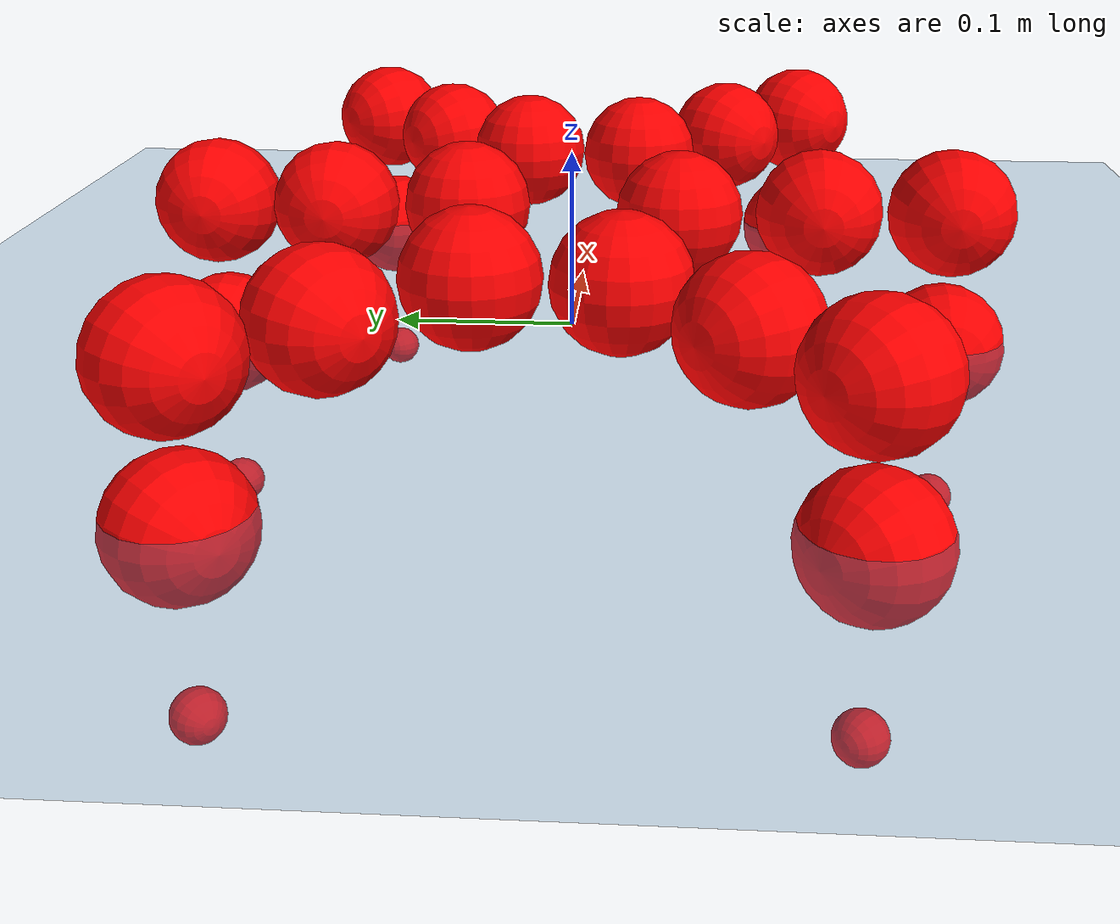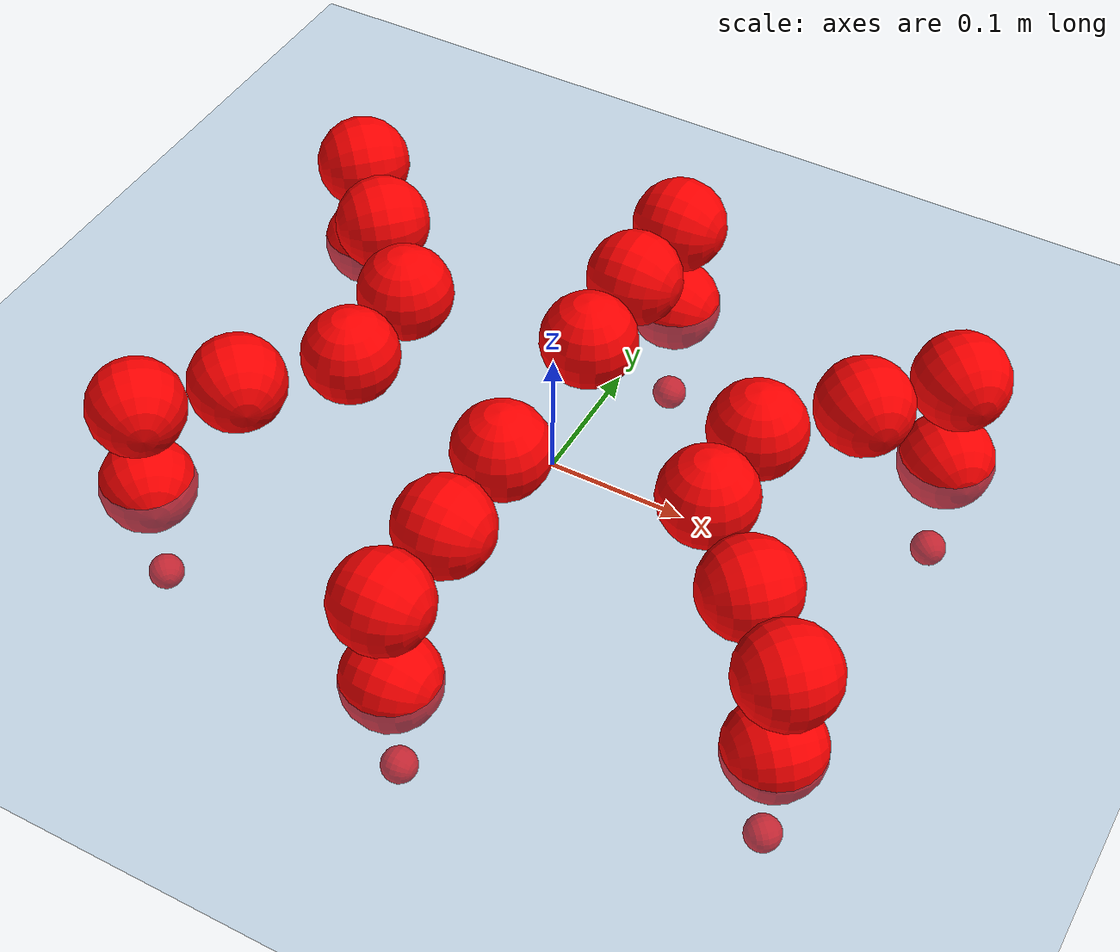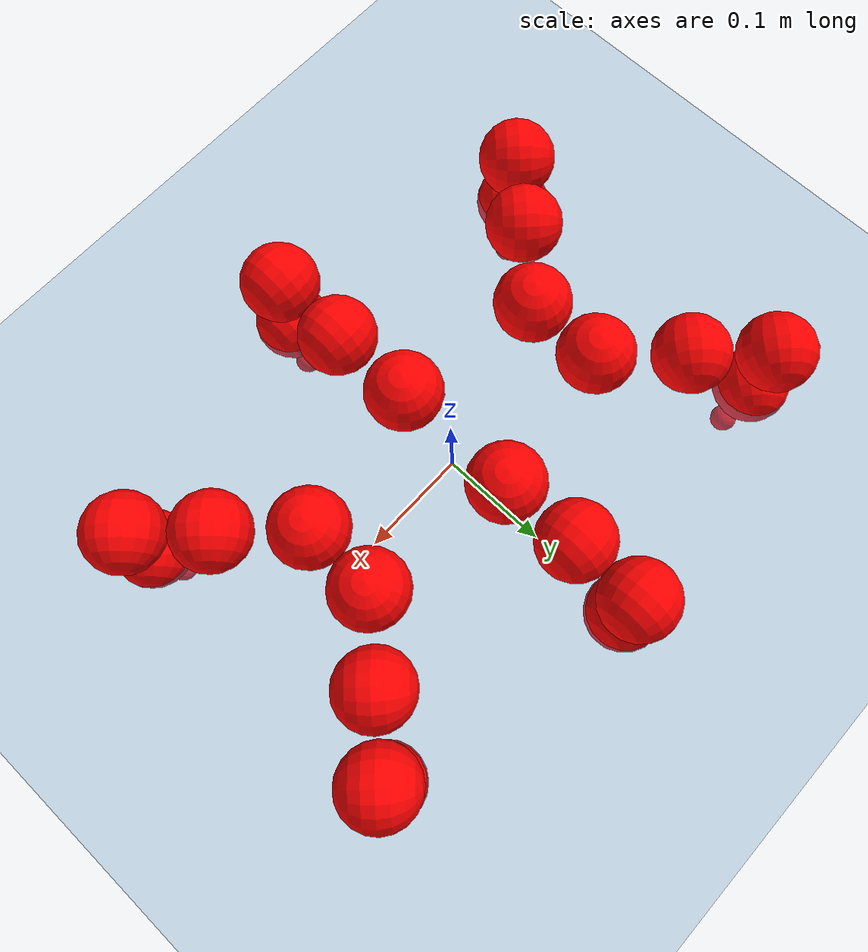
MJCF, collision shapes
<mujoco model="Golem">
  <compiler angle="radian" assetdir="assets" balanceinertia="true" inertiafromgeom="false"/>

  <option timestep="0.005" density="1.2" viscosity="2e-05"/>

  <size nkey="1"/>

  <visual>
    <quality shadowsize="8192"/>
    <map shadowclip="0.5"/>
  </visual>

  <default>
    <default class="/">
      <joint armature="0.01" damping="0.01" frictionloss="0.01"/>
      <geom contype="0" conaffinity="0" group="1" solref="-1000 -80"/>
      <site size="0.01 0.005 0.005" group="5"/>
      <general forcelimited="true" biastype="affine" gainprm="25" biasprm="0 -25 -0.5"/>
      <default class="visual">
        <geom type="mesh" group="2"/>
      </default>
      <default class="collision">
        <geom group="3"/>
      </default>
      <default class="foot">
        <geom size="0.01 0 0" condim="6" group="4" priority="1" solimp="0.015 1 0.01"/>
      </default>
      <default class="reward_collision_sphere">
        <geom group="5" rgba="1 0 0 1"/>
      </default>
    </default>
  </default>

  <asset>
    <texture type="skybox" colorspace="auto" name="//unnamed_texture_0" builtin="gradient" rgb1="0.95 0.95 0.95" rgb2="0.95 0.95 0.95" width="100" height="600"/>
    <texture type="2d" colorspace="auto" name="texplane" builtin="checker" rgb1="0.345 0.575 0.748" rgb2="0.345 0.575 0.748" markrgb="1 1 1" width="512" height="512"/>
    <material name="MatPlane" class="/" texture="texplane" texuniform="true" texrepeat="2 2" specular="0.9"/>
    <mesh name="body" class="/" file="body.stl" scale="0.001 0.001 0.001"/>
    <mesh name="coxa" class="/" file="coxa.stl" scale="0.001 0.001 0.001"/>
    <mesh name="femur" class="/" file="femur.stl" scale="0.001 0.001 0.001"/>
    <mesh name="tibia" class="/" file="tibia.stl" scale="0.001 0.001 0.001"/>
    <mesh name="tarsus" class="/" file="tarsus.stl" scale="0.001 0.001 0.001"/>
  </asset>

  <worldbody>
    <geom name="floor" class="/" size="100 100 0.125" type="plane" group="0" material="MatPlane"/>
    <light name="toplight_shadow" class="/" pos="0 0 5" dir="0.0990148 0.0990148 -0.990148" type="directional" ambient="0.04 0.04 0.04" diffuse="0.55 0.55 0.55" specular="0.12 0.12 0.12"/>
    <light name="toplight_fill" class="/" pos="0 0 5" dir="0.0990148 0.0990148 -0.990148" type="directional" castshadow="false" ambient="0.04 0.04 0.04" diffuse="0.3 0.3 0.3" specular="0.08 0.08 0.08"/>
    <body name="trunk" pos="-0.00228778 4.49862e-05 0.000277246" quat="0.999999 -0.00124696 -0.000488332 -9.02751e-05">
      <inertial pos="0.00154868 0.00230026 3.0225e-05" quat="0.999978 -0.00419861 -0.00448024 -0.0025588" mass="2.36218" diaginertia="0.00493599 0.00127736 0.0139133"/>
      <joint name="//unnamed_joint_0" type="free"/>
      <geom name="//unnamed_geom_1" class="/" pos="0 0 0.0690136" quat="1 0 0 0" type="mesh" rgba="0.9 0.9 0.9 1" mesh="body"/>
      <site name="imu" class="/" pos="0.111676 0.0130938 0.102973" size="0.00872761"/>
      <camera name="track" class="/" pos="0 -1.32688 0" quat="0.707107 0.707107 0 0" mode="trackcom"/>
      <camera name="ego_camera" class="/" pos="0.113946 0 0.107834" quat="-0.5 -0.5 0.5 0.5"/>
      <body name="coxa_RR" pos="-0.156274 -0.0525261 0.0692949" quat="0.382843 0.00100876 0.000891034 -0.923813">
        <inertial pos="0.00177441 0.000529189 0.000881321" quat="0.999922 -0.00850356 -0.00895346 0.00165353" mass="0.141955" diaginertia="0.00536131 0.00132574 0.0151835"/>
        <joint name="coxa_joint_RR" class="/" pos="0 0 0" axis="0.00167095 -0.0022045 -0.999996" range="-3.139 3.08861" armature="0.0098491" damping="0.016028" frictionloss="0.00887288"/>
        <geom name="//unnamed_geom_2" class="/" type="mesh" rgba="0.2 0.2 0.2 1" mesh="coxa"/>
        <geom name="//unnamed_geom_3" class="reward_collision_sphere" size="0.0349105" pos="-0.0262952 0 0"/>
        <body name="femur_RR" pos="0.0531385 0.00294864 -0.00268388" quat="0.50034 -0.500683 0.499342 0.499633">
          <inertial pos="0.00275679 0.000257986 -0.000654507" quat="0.999909 -0.0134702 -0.000864604 0.000512461" mass="0.135488" diaginertia="0.00526333 0.00130942 0.0146826"/>
          <joint name="femur_joint_RR" class="/" pos="0 0 0" axis="0.000876829 0.00104567 -0.999999" stiffness="0.00856143" range="-3.11037 3.10368" armature="0.00883156" damping="0.0109258" frictionloss="0.00887337"/>
          <geom name="//unnamed_geom_4" class="/" type="mesh" rgba="0.9 0.9 0.9 1" mesh="femur"/>
          <geom name="//unnamed_geom_5" class="reward_collision_sphere" size="0.0349105"/>
          <body name="tibia_RR" pos="0.00203621 -0.0693441 0.00223646" quat="0.000680987 1 -0.00025424 7.9265e-05">
            <inertial pos="-0.00238776 -0.000743003 0.000300184" quat="0.999998 -0.0011423 0.000928042 0.00155167" mass="0.137735" diaginertia="0.0052131 0.00129305 0.0150924"/>
            <joint name="tibia_joint_RR" class="/" pos="0 0 0" axis="-0.0138557 0.000347353 0.999904" stiffness="0.00830248" range="-3.14305 3.12809" armature="0.00882399" damping="0.000946949" frictionloss="0.00895856"/>
            <geom name="//unnamed_geom_6" class="/" type="mesh" rgba="0.2 0.2 0.2 1" mesh="tibia"/>
            <geom name="//unnamed_geom_7" class="reward_collision_sphere" size="0.0349105"/>
            <body name="tarsus_RR" pos="0.0755491 0.00262892 -5.2291e-05" quat="1 -6.56139e-05 -0.00048285 -0.000559791">
              <inertial pos="0.0531546 0.000487533 -7.80614e-05" quat="0.499711 0.500002 0.500262 0.500024" mass="0.137445" diaginertia="0.00541949 0.00132808 0.0151388"/>
              <joint name="tarsus_joint_RR" class="/" pos="0 0 0" axis="0.000169936 -0.00022211 1" range="-3.14299 3.13704" armature="0.00839995" damping="0.0421016" frictionloss="0.00763016"/>
              <geom name="//unnamed_geom_8" class="/" type="mesh" rgba="0.9 0.9 0.9 1" mesh="tarsus"/>
              <geom name="foot_1" class="foot" size="0.00913401" pos="0.0981689 0 0" quat="0 -0.707107 0 0.707107"/>
              <geom name="//unnamed_geom_10" class="reward_collision_sphere" size="0.0349105"/>
              <geom name="//unnamed_geom_11" class="reward_collision_sphere" size="0.0130914" pos="0.0942246 0 0"/>
              <site name="foot_1" class="foot" pos="0.0981689 0 0" quat="0 -0.707107 0 0.707107" size="0.00872761"/>
            </body>
          </body>
        </body>
      </body>
      <body name="coxa_RM" pos="-0.00290642 -0.0865098 0.0671135" quat="0.707043 -5.20581e-05 -9.55677e-06 -0.70717">
        <inertial pos="-0.00263089 0.000345503 0.00137872" quat="0.999996 -0.00238122 -0.000573861 -0.00109354" mass="0.136885" diaginertia="0.00529858 0.00134413 0.0151776"/>
        <joint name="coxa_joint_RM" class="/" pos="0 0 0" axis="6.01835e-05 0.000561774 -1" range="-3.08971 3.14549" armature="0.00974496" damping="0.0155622" frictionloss="0.00851522"/>
        <geom name="//unnamed_geom_12" class="/" type="mesh" rgba="0.2 0.2 0.2 1" mesh="coxa"/>
        <geom name="//unnamed_geom_13" class="reward_collision_sphere" size="0.0349105" pos="-0.0262952 0 0"/>
        <body name="femur_RM" pos="0.0503914 0.00223162 0.00123629" quat="0.499846 -0.499493 0.500418 0.500242">
          <inertial pos="-0.000420489 -0.0015583 1.9536e-05" quat="0.999914 0.00600844 -0.00769614 0.00873251" mass="0.129939" diaginertia="0.00496597 0.00125183 0.014301"/>
          <joint name="femur_joint_RM" class="/" pos="0 0 0" axis="0.00141637 0.000128193 -0.999999" range="-3.19143 3.15525" armature="0.00866666" damping="0.00945951" frictionloss="0.00869401"/>
          <geom name="//unnamed_geom_14" class="/" type="mesh" rgba="0.9 0.9 0.9 1" mesh="femur"/>
          <geom name="//unnamed_geom_15" class="reward_collision_sphere" size="0.0349105"/>
          <body name="tibia_RM" pos="-0.00115583 -0.0719647 -0.00113946" quat="-0.000779077 0.999999 0.000936026 0.000197183">
            <inertial pos="-0.00223867 0.000355536 0.000903599" quat="0.999927 0.0107672 -0.00525763 -0.00135364" mass="0.13216" diaginertia="0.00516757 0.0012487 0.0141927"/>
            <joint name="tibia_joint_RM" class="/" pos="0 0 0" axis="-0.00201848 0.00104024 0.999997" range="-3.14217 3.13628" armature="0.00910629" damping="0" frictionloss="0.00909658"/>
            <geom name="//unnamed_geom_16" class="/" type="mesh" rgba="0.2 0.2 0.2 1" mesh="tibia"/>
            <geom name="//unnamed_geom_17" class="reward_collision_sphere" size="0.0349105"/>
            <body name="tarsus_RM" pos="0.0770186 0.000188855 -0.00193519" quat="0.999999 -0.00130559 6.52074e-05 0.00015251">
              <inertial pos="0.0522272 -0.000363111 0.000492976" quat="0.499138 0.500706 0.500316 0.499839" mass="0.131324" diaginertia="0.00522658 0.0012685 0.0148965"/>
              <joint name="tarsus_joint_RM" class="/" pos="0 0 0" axis="0.0135284 -0.00120599 0.999908" range="-3.18283 3.18989" armature="0.00805821" damping="0.00753721" frictionloss="0.00761662"/>
              <geom name="//unnamed_geom_18" class="/" type="mesh" rgba="0.9 0.9 0.9 1" mesh="tarsus"/>
              <geom name="foot_2" class="foot" size="0.00850031" pos="0.0981689 0 0" quat="0 -0.707107 0 0.707107"/>
              <geom name="//unnamed_geom_20" class="reward_collision_sphere" size="0.0349105"/>
              <geom name="//unnamed_geom_21" class="reward_collision_sphere" size="0.0130914" pos="0.0942246 0 0"/>
              <site name="foot_2" class="foot" pos="0.0981689 0 0" quat="0 -0.707107 0 0.707107" size="0.00872761"/>
            </body>
          </body>
        </body>
      </body>
      <body name="coxa_RF" pos="0.153259 -0.0522733 0.0700659" quat="0.923854 0.0012633 0.00022741 -0.382743">
        <inertial pos="0.00280177 0.00273793 0.00026528" quat="0.999996 -0.00143448 0.000731221 0.00214845" mass="0.130723" diaginertia="0.00521601 0.00125111 0.014611"/>
        <joint name="coxa_joint_RF" class="/" pos="0 0 0" axis="0.00347771 -0.00597977 -0.999976" range="-3.12259 3.0849" armature="0.0086992" damping="0.0263785" frictionloss="0.00839593"/>
        <geom name="//unnamed_geom_22" class="/" type="mesh" rgba="0.2 0.2 0.2 1" mesh="coxa"/>
        <geom name="//unnamed_geom_23" class="reward_collision_sphere" size="0.0349105" pos="-0.0262952 0 0"/>
        <body name="femur_RF" pos="0.0529606 -0.000328299 -0.000249576" quat="0.499857 -0.500963 0.499962 0.499216">
          <inertial pos="0.000384518 -0.00173389 0.00274225" quat="0.999912 0.00599796 0.00536461 0.0105016" mass="0.131536" diaginertia="0.00500723 0.00124456 0.0136216"/>
          <joint name="femur_joint_RF" class="/" pos="0 0 0" axis="0.00600713 -0.011298 -0.999918" range="-3.13211 3.10957" armature="0.00994822" damping="0.00559281" frictionloss="0.00978053"/>
          <geom name="//unnamed_geom_24" class="/" type="mesh" rgba="0.9 0.9 0.9 1" mesh="femur"/>
          <geom name="//unnamed_geom_25" class="reward_collision_sphere" size="0.0349105"/>
          <body name="tibia_RF" pos="-0.00122186 -0.0699432 -0.00135819" quat="0.000186681 1 2.57255e-05 0.00045575">
            <inertial pos="-0.000716522 6.69938e-05 -0.000620812" quat="0.999923 -0.00651026 -0.0100279 -0.00344756" mass="0.130556" diaginertia="0.00494989 0.00125307 0.0145694"/>
            <joint name="tibia_joint_RF" class="/" pos="0 0 0" axis="0.000273251 -0.00398444 0.999992" range="-3.14081 3.19281" armature="0.0084238" damping="0.00209837" frictionloss="0.00863819"/>
            <geom name="//unnamed_geom_26" class="/" type="mesh" rgba="0.2 0.2 0.2 1" mesh="tibia"/>
            <geom name="//unnamed_geom_27" class="reward_collision_sphere" size="0.0349105"/>
            <body name="tarsus_RF" pos="0.075372 -0.00134582 0.00162698" quat="0.999999 0.000644008 -0.000624373 0.000885391">
              <inertial pos="0.0530376 0.000157079 0.000253108" quat="0.507393 0.498307 0.500026 0.494183" mass="0.130042" diaginertia="0.00505986 0.00125508 0.0137833"/>
              <joint name="tarsus_joint_RF" class="/" pos="0 0 0" axis="-0.00222907 -0.00184413 0.999996" range="-3.14017 3.13723" armature="0.00861351" damping="0.00781" frictionloss="0.0094798"/>
              <geom name="//unnamed_geom_28" class="/" type="mesh" rgba="0.9 0.9 0.9 1" mesh="tarsus"/>
              <geom name="foot_3" class="foot" size="0.00948754" pos="0.0981689 0 0" quat="0 -0.707107 0 0.707107"/>
              <geom name="//unnamed_geom_30" class="reward_collision_sphere" size="0.0349105"/>
              <geom name="//unnamed_geom_31" class="reward_collision_sphere" size="0.0130914" pos="0.0942246 0 0"/>
              <site name="foot_3" class="foot" pos="0.0981689 0 0" quat="0 -0.707107 0 0.707107" size="0.00872761"/>
            </body>
          </body>
        </body>
      </body>
      <body name="coxa_LR" pos="-0.156694 0.0563288 0.0705892" quat="0.382668 -0.000795835 -0.000970112 0.923885">
        <inertial pos="-0.000326069 -0.000840123 -0.00011432" quat="0.999996 -0.00244621 -0.00114629 -0.000562038" mass="0.132616" diaginertia="0.00503647 0.00127999 0.0142099"/>
        <joint name="coxa_joint_LR" class="/" pos="0 0 0" axis="0.010874 -0.0120132 -0.999869" range="-3.08745 3.13712" armature="0.00837428" damping="0.0105499" frictionloss="0.00891754"/>
        <geom name="//unnamed_geom_32" class="/" type="mesh" rgba="0.2 0.2 0.2 1" mesh="coxa"/>
        <geom name="//unnamed_geom_33" class="reward_collision_sphere" size="0.0349105" pos="-0.0262952 0 0"/>
        <body name="femur_LR" pos="0.0557472 -0.00185283 -0.00240808" quat="0.500127 -0.49993 0.500015 0.499928">
          <inertial pos="-0.000311625 0.00066682 0.000704112" quat="0.999999 0.00154278 -0.000665893 -0.000169952" mass="0.13266" diaginertia="0.00523598 0.00126258 0.0148729"/>
          <joint name="femur_joint_LR" class="/" pos="0 0 0" axis="0.00468278 0.00522536 0.999975" range="-3.19437 3.19288" armature="0.00898423" damping="0" frictionloss="0.00897424"/>
          <geom name="//unnamed_geom_34" class="/" type="mesh" rgba="0.9 0.9 0.9 1" mesh="femur"/>
          <geom name="//unnamed_geom_35" class="reward_collision_sphere" size="0.0349105"/>
          <body name="tibia_LR" pos="-0.000258269 -0.0732896 -0.00173767" quat="-5.62058e-05 1 -0.000358457 3.56453e-05">
            <inertial pos="-0.00264183 0.000600461 -0.00254881" quat="0.999989 -0.00269724 0.00389466 0.000155028" mass="0.132871" diaginertia="0.00526297 0.00134374 0.0143872"/>
            <joint name="tibia_joint_LR" class="/" pos="0 0 0" axis="-0.000373529 -0.00245481 -0.999997" range="-3.08619 3.18827" armature="0.00823499" damping="0.001986" frictionloss="0.00874329"/>
            <geom name="//unnamed_geom_36" class="/" type="mesh" rgba="0.2 0.2 0.2 1" mesh="tibia"/>
            <geom name="//unnamed_geom_37" class="reward_collision_sphere" size="0.0349105"/>
            <body name="tarsus_LR" pos="0.0775718 0.000495022 -9.19409e-06" quat="1 1.28535e-05 5.16177e-05 -8.51031e-05">
              <inertial pos="0.0523699 5.23713e-05 -0.000492765" quat="0.499738 0.499429 0.499568 0.501263" mass="0.136105" diaginertia="0.00525227 0.00136208 0.0150991"/>
              <joint name="tarsus_joint_LR" class="/" pos="0 0 0" axis="-0.00193304 0.0139463 -0.999901" stiffness="0.00596025" range="-3.1203 3.09203" armature="0.00913661" damping="0.0270252" frictionloss="0.00978723"/>
              <geom name="//unnamed_geom_38" class="/" type="mesh" rgba="0.9 0.9 0.9 1" mesh="tarsus"/>
              <geom name="foot_4" class="foot" size="0.00860857" pos="0.0981689 0 0" quat="0.707107 0 -0.707107 0"/>
              <geom name="//unnamed_geom_40" class="reward_collision_sphere" size="0.0349105"/>
              <geom name="//unnamed_geom_41" class="reward_collision_sphere" size="0.0130914" pos="0.0942246 0 0"/>
              <site name="foot_4" class="foot" pos="0.0981689 0 0" quat="0.707107 0 -0.707107 0" size="0.00872761"/>
            </body>
          </body>
        </body>
      </body>
      <body name="coxa_LM" pos="-0.00138563 0.0839364 0.0705583" quat="0.706991 -0.000216022 -0.000298761 0.707223">
        <inertial pos="0.00302528 0.00256798 0.000171734" quat="1 -0.000204527 0.00032567 0.000364921" mass="0.133417" diaginertia="0.00514753 0.00128687 0.0146274"/>
        <joint name="coxa_joint_LM" class="/" pos="0 0 0" axis="0.00501646 -0.00207124 -0.999985" range="-3.10419 3.10282" armature="0.00987041" damping="0.00444212" frictionloss="0.00943287"/>
        <geom name="//unnamed_geom_42" class="/" type="mesh" rgba="0.2 0.2 0.2 1" mesh="coxa"/>
        <geom name="//unnamed_geom_43" class="reward_collision_sphere" size="0.0349105" pos="-0.0262952 0 0"/>
        <body name="femur_LM" pos="0.0470547 0.00212731 -0.000421886" quat="0.500391 -0.500245 0.500573 0.498789">
          <inertial pos="-0.00202375 0.0013604 0.00107383" quat="0.999924 0.0112148 -0.00243622 -0.00445602" mass="0.1318" diaginertia="0.00527773 0.00123929 0.0142694"/>
          <joint name="femur_joint_LM" class="/" pos="0 0 0" axis="-0.00014788 0.000954062 1" stiffness="0.00554952" range="-3.13437 3.13997" armature="0.00755394" damping="0" frictionloss="0.00868683"/>
          <geom name="//unnamed_geom_44" class="/" type="mesh" rgba="0.9 0.9 0.9 1" mesh="femur"/>
          <geom name="//unnamed_geom_45" class="reward_collision_sphere" size="0.0349105"/>
          <body name="tibia_LM" pos="-0.000397662 -0.0676859 -0.00202833" quat="1.1341e-06 1 8.58614e-05 -2.94495e-05">
            <inertial pos="-0.000493892 0.000341178 0.00115075" quat="1 -0.000485034 -0.00067055 0.000420953" mass="0.129005" diaginertia="0.0050206 0.00129075 0.0146087"/>
            <joint name="tibia_joint_LM" class="/" pos="0 0 0" axis="0.00933345 0.0033394 -0.999951" range="-3.13772 3.18524" armature="0.00897901" damping="0" frictionloss="0.00796919"/>
            <geom name="//unnamed_geom_46" class="/" type="mesh" rgba="0.2 0.2 0.2 1" mesh="tibia"/>
            <geom name="//unnamed_geom_47" class="reward_collision_sphere" size="0.0349105"/>
            <body name="tarsus_LM" pos="0.0785561 -0.00018495 -0.000757506" quat="1 0.000169787 -0.00010002 -1.38718e-05">
              <inertial pos="0.054011 0.000403691 -0.000274754" quat="0.498012 0.500059 0.505241 0.496645" mass="0.141892" diaginertia="0.00540742 0.00131877 0.0145677"/>
              <joint name="tarsus_joint_LM" class="/" pos="0 0 0" axis="-0.000402597 0.00256221 -0.999997" stiffness="0.0122389" range="-3.13756 3.09695" armature="0.00859733" damping="0.0203036" frictionloss="0.00870789"/>
              <geom name="//unnamed_geom_48" class="/" type="mesh" rgba="0.9 0.9 0.9 1" mesh="tarsus"/>
              <geom name="foot_5" class="foot" size="0.00882358" pos="0.0981689 0 0" quat="0.707107 0 -0.707107 0"/>
              <geom name="//unnamed_geom_50" class="reward_collision_sphere" size="0.0349105"/>
              <geom name="//unnamed_geom_51" class="reward_collision_sphere" size="0.0130914" pos="0.0942246 0 0"/>
              <site name="foot_5" class="foot" pos="0.0981689 0 0" quat="0.707107 0 -0.707107 0" size="0.00872761"/>
            </body>
          </body>
        </body>
      </body>
      <body name="coxa_LF" pos="0.155738 0.0547705 0.0702098" quat="0.923834 -7.8841e-05 7.71254e-05 0.382793">
        <inertial pos="-0.000297495 -0.000772218 0.000176805" quat="1 -2.7241e-06 -2.17954e-06 5.51371e-06" mass="0.130048" diaginertia="0.00507887 0.00130279 0.0147934"/>
        <joint name="coxa_joint_LF" class="/" pos="0 0 0" axis="0.00997169 -0.000353085 -0.99995" range="-3.14628 3.12442" armature="0.0086002" damping="0.012177" frictionloss="0.00864691"/>
        <geom name="//unnamed_geom_52" class="/" type="mesh" rgba="0.2 0.2 0.2 1" mesh="coxa"/>
        <geom name="//unnamed_geom_53" class="reward_collision_sphere" size="0.0349105" pos="-0.0262952 0 0"/>
        <body name="femur_LF" pos="0.0510451 0.0028875 -0.00242993" quat="0.499846 -0.500123 0.499914 0.500116">
          <inertial pos="-0.00270568 0.000490578 0.000639638" quat="0.999996 -0.00233754 -3.73687e-05 -0.00127796" mass="0.13358" diaginertia="0.00508286 0.00121946 0.0140635"/>
          <joint name="femur_joint_LF" class="/" pos="0 0 0" axis="-0.0136631 0.00484396 0.999895" stiffness="0.000770004" range="-3.13629 3.08504" armature="0.00761445" damping="0.00239816" frictionloss="0.00827927"/>
          <geom name="//unnamed_geom_54" class="/" type="mesh" rgba="0.9 0.9 0.9 1" mesh="femur"/>
          <geom name="//unnamed_geom_55" class="reward_collision_sphere" size="0.0349105"/>
          <body name="tibia_LF" pos="-0.00247717 -0.0711282 0.00255873" quat="-0.000149669 1 -0.000326418 2.61465e-05">
            <inertial pos="-0.000396076 0.00120789 -0.00098988" quat="0.999908 -0.000195313 0.0130848 -0.00347327" mass="0.130242" diaginertia="0.0051403 0.00129574 0.0145253"/>
            <joint name="tibia_joint_LF" class="/" pos="0 0 0" axis="3.34356e-05 -2.74184e-05 -1" range="-3.12791 3.11301" armature="0.00760837" damping="0" frictionloss="0.00870696"/>
            <geom name="//unnamed_geom_56" class="/" type="mesh" rgba="0.2 0.2 0.2 1" mesh="tibia"/>
            <geom name="//unnamed_geom_57" class="reward_collision_sphere" size="0.0349105"/>
            <body name="tarsus_LF" pos="0.0783512 0.000534636 7.65948e-06" quat="0.999999 0.000894876 -0.000357472 0.000831961">
              <inertial pos="0.0553291 -0.00237725 -0.000267922" quat="0.500664 0.49877 0.500026 0.500538" mass="0.129078" diaginertia="0.0050551 0.00124381 0.0143187"/>
              <joint name="tarsus_joint_LF" class="/" pos="0 0 0" axis="0.00672502 0.0119356 -0.999906" range="-3.0864 3.12481" armature="0.00858992" damping="0.023878" frictionloss="0.00848415"/>
              <geom name="//unnamed_geom_58" class="/" type="mesh" rgba="0.9 0.9 0.9 1" mesh="tarsus"/>
              <geom name="foot_6" class="foot" size="0.00781356" pos="0.0981689 0 0" quat="0.707107 0 -0.707107 0"/>
              <geom name="//unnamed_geom_60" class="reward_collision_sphere" size="0.0349105"/>
              <geom name="//unnamed_geom_61" class="reward_collision_sphere" size="0.0130914" pos="0.0942246 0 0"/>
              <site name="foot_6" class="foot" pos="0.0981689 0 0" quat="0.707107 0 -0.707107 0" size="0.00872761"/>
            </body>
          </body>
        </body>
      </body>
    </body>
  </worldbody>

  <contact>
    <pair class="/" geom1="floor" geom2="foot_1" name="//unnamed_contact_0"/>
    <pair class="/" geom1="floor" geom2="foot_2" name="//unnamed_contact_1"/>
    <pair class="/" geom1="floor" geom2="foot_3" name="//unnamed_contact_2"/>
    <pair class="/" geom1="floor" geom2="foot_4" name="//unnamed_contact_3"/>
    <pair class="/" geom1="floor" geom2="foot_5" name="//unnamed_contact_4"/>
    <pair class="/" geom1="floor" geom2="foot_6" name="//unnamed_contact_5"/>
  </contact>

  <actuator>
    <general name="coxa_joint_RR" class="/" joint="coxa_joint_RR" forcerange="-6.27396 6.27396" gainprm="21.4917" biasprm="0 -21.4917 -0.431104"/>
    <general name="femur_joint_RR" class="/" joint="femur_joint_RR" forcerange="-6.37811 6.37811" gainprm="21.4917" biasprm="0 -21.4917 -0.431104"/>
    <general name="tibia_joint_RR" class="/" joint="tibia_joint_RR" forcerange="-6.47219 6.47219" gainprm="21.4917" biasprm="0 -21.4917 -0.431104"/>
    <general name="tarsus_joint_RR" class="/" joint="tarsus_joint_RR" forcerange="-6.55531 6.55531" gainprm="21.4917" biasprm="0 -21.4917 -0.431104"/>
    <general name="coxa_joint_RM" class="/" joint="coxa_joint_RM" forcerange="-6.50121 6.50121" gainprm="21.4917" biasprm="0 -21.4917 -0.431104"/>
    <general name="femur_joint_RM" class="/" joint="femur_joint_RM" forcerange="-5.78107 5.78107" gainprm="21.4917" biasprm="0 -21.4917 -0.431104"/>
    <general name="tibia_joint_RM" class="/" joint="tibia_joint_RM" forcerange="-6.34332 6.34332" gainprm="21.4917" biasprm="0 -21.4917 -0.431104"/>
    <general name="tarsus_joint_RM" class="/" joint="tarsus_joint_RM" forcerange="-6.33775 6.33775" gainprm="21.4917" biasprm="0 -21.4917 -0.431104"/>
    <general name="coxa_joint_RF" class="/" joint="coxa_joint_RF" forcerange="-5.75274 5.75274" gainprm="21.4917" biasprm="0 -21.4917 -0.431104"/>
    <general name="femur_joint_RF" class="/" joint="femur_joint_RF" forcerange="-5.81237 5.81237" gainprm="21.4917" biasprm="0 -21.4917 -0.431104"/>
    <general name="tibia_joint_RF" class="/" joint="tibia_joint_RF" forcerange="-6.89947 6.89947" gainprm="21.4917" biasprm="0 -21.4917 -0.431104"/>
    <general name="tarsus_joint_RF" class="/" joint="tarsus_joint_RF" forcerange="-6.49474 6.49474" gainprm="21.4917" biasprm="0 -21.4917 -0.431104"/>
    <general name="coxa_joint_LR" class="/" joint="coxa_joint_LR" forcerange="-6.51952 6.51952" gainprm="21.4917" biasprm="0 -21.4917 -0.431104"/>
    <general name="femur_joint_LR" class="/" joint="femur_joint_LR" forcerange="-6.07281 6.07281" gainprm="21.4917" biasprm="0 -21.4917 -0.431104"/>
    <general name="tibia_joint_LR" class="/" joint="tibia_joint_LR" forcerange="-5.7277 5.7277" gainprm="21.4917" biasprm="0 -21.4917 -0.431104"/>
    <general name="tarsus_joint_LR" class="/" joint="tarsus_joint_LR" forcerange="-6.9989 6.9989" gainprm="21.4917" biasprm="0 -21.4917 -0.431104"/>
    <general name="coxa_joint_LM" class="/" joint="coxa_joint_LM" forcerange="-6.62089 6.62089" gainprm="21.4917" biasprm="0 -21.4917 -0.431104"/>
    <general name="femur_joint_LM" class="/" joint="femur_joint_LM" forcerange="-6.34759 6.34759" gainprm="21.4917" biasprm="0 -21.4917 -0.431104"/>
    <general name="tibia_joint_LM" class="/" joint="tibia_joint_LM" forcerange="-6.36548 6.36548" gainprm="21.4917" biasprm="0 -21.4917 -0.431104"/>
    <general name="tarsus_joint_LM" class="/" joint="tarsus_joint_LM" forcerange="-6.30761 6.30761" gainprm="21.4917" biasprm="0 -21.4917 -0.431104"/>
    <general name="coxa_joint_LF" class="/" joint="coxa_joint_LF" forcerange="-6.42044 6.42044" gainprm="21.4917" biasprm="0 -21.4917 -0.431104"/>
    <general name="femur_joint_LF" class="/" joint="femur_joint_LF" forcerange="-6.35415 6.35415" gainprm="21.4917" biasprm="0 -21.4917 -0.431104"/>
    <general name="tibia_joint_LF" class="/" joint="tibia_joint_LF" forcerange="-6.33182 6.33182" gainprm="21.4917" biasprm="0 -21.4917 -0.431104"/>
    <general name="tarsus_joint_LF" class="/" joint="tarsus_joint_LF" forcerange="-6.46611 6.46611" gainprm="21.4917" biasprm="0 -21.4917 -0.431104"/>
  </actuator>

  <sensor>
    <gyro site="imu" name="imu_angular_velocity"/>
    <velocimeter site="imu" name="imu_linear_velocity"/>
    <framelinvel objtype="site" objname="foot_1" name="foot_1_global_linear_velocity"/>
    <framelinvel objtype="site" objname="foot_2" name="foot_2_global_linear_velocity"/>
    <framelinvel objtype="site" objname="foot_3" name="foot_3_global_linear_velocity"/>
    <framelinvel objtype="site" objname="foot_4" name="foot_4_global_linear_velocity"/>
    <framelinvel objtype="site" objname="foot_5" name="foot_5_global_linear_velocity"/>
    <framelinvel objtype="site" objname="foot_6" name="foot_6_global_linear_velocity"/>
  </sensor>

  <keyframe>
    <key name="home" qpos="0 0 0.1457 1 0 0 0 0 0 0 0 0 0 0 0 0 0 0 0 0 0 0 0 0 0 0 0 0 0 0 0"/>
  </keyframe>
</mujoco>
